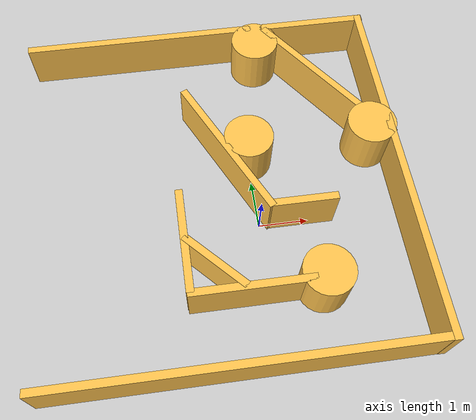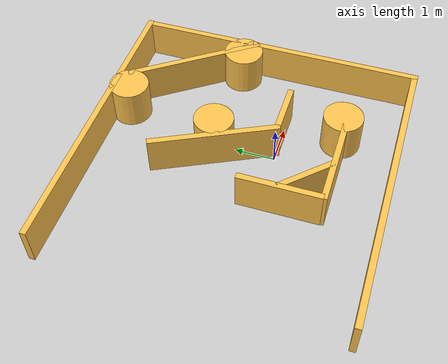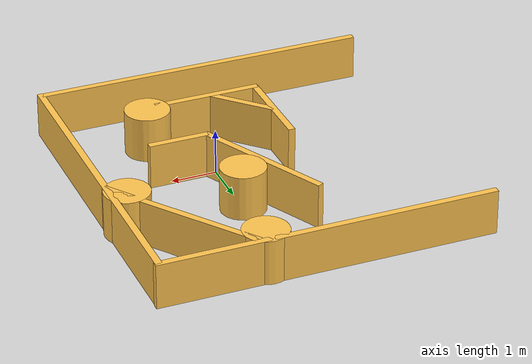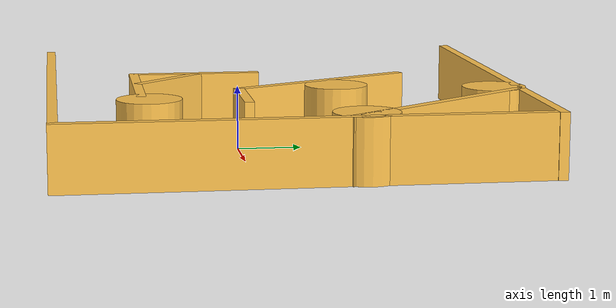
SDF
<?xml version='1.0'?>
<sdf version='1.5'>
  <model name='Maze_ql_1'>
    <link name='Wall_14'>
      <pose frame=''>-0.409926 -1.55115 0 0 -0 3.14159</pose>
      <self_collide>0</self_collide>
      <kinematic>0</kinematic>
      <visual name='Wall_14_Visual'>
        <pose frame=''>0 0 0.5 0 -0 0</pose>
        <geometry>
          <box>
            <size>2.36648 0.15 1</size>
          </box>
        </geometry>
        <material>
          <script>
            <uri>file://media/materials/scripts/gazebo.material</uri>
            <name>Gazebo/Grey</name>
          </script>
          <ambient>1 0.764706 0.305882 1</ambient>
          <diffuse>0.7 0.7 0.7 1</diffuse>
          <specular>0.01 0.01 0.01 1</specular>
          <emissive>0 0 0 1</emissive>
          <shader type='pixel'/>
        </material>
        <cast_shadows>1</cast_shadows>
        <transparency>0</transparency>
      </visual>
      <collision name='Wall_14_Collision'>
        <laser_retro>0</laser_retro>
        <max_contacts>10</max_contacts>
        <pose frame=''>0 0 0.5 0 -0 0</pose>
        <geometry>
          <box>
            <size>2.36648 0.15 1</size>
          </box>
        </geometry>
        <surface>
          <friction>
            <ode>
              <mu>1</mu>
              <mu2>1</mu2>
              <fdir1>0 0 0</fdir1>
              <slip1>0</slip1>
              <slip2>0</slip2>
            </ode>
          </friction>
          <bounce>
            <restitution_coefficient>0</restitution_coefficient>
            <threshold>1e+06</threshold>
          </bounce>
          <contact>
            <collide_without_contact>0</collide_without_contact>
            <collide_without_contact_bitmask>1</collide_without_contact_bitmask>
            <collide_bitmask>1</collide_bitmask>
            <ode>
              <soft_cfm>0</soft_cfm>
              <soft_erp>0.2</soft_erp>
              <kp>1e+13</kp>
              <kd>1</kd>
              <max_vel>0.01</max_vel>
              <min_depth>0</min_depth>
            </ode>
            <bullet>
              <split_impulse>1</split_impulse>
              <split_impulse_penetration_threshold>-0.01</split_impulse_penetration_threshold>
              <soft_cfm>0</soft_cfm>
              <soft_erp>0.2</soft_erp>
              <kp>1e+13</kp>
              <kd>1</kd>
            </bullet>
          </contact>
        </surface>
      </collision>
    </link>
    <link name='Wall_15'>
      <pose frame=''>-1.53187 -0.513425 0 0 -0 1.5708</pose>
      <self_collide>0</self_collide>
      <kinematic>0</kinematic>
      <visual name='Wall_15_Visual'>
        <pose frame=''>0 0 0.5 0 -0 0</pose>
        <geometry>
          <box>
            <size>2.06622 0.15 1</size>
          </box>
        </geometry>
        <material>
          <script>
            <uri>file://media/materials/scripts/gazebo.material</uri>
            <name>Gazebo/Grey</name>
          </script>
          <ambient>1 0.764706 0.305882 1</ambient>
          <diffuse>0.7 0.7 0.7 1</diffuse>
          <specular>0.01 0.01 0.01 1</specular>
          <emissive>0 0 0 1</emissive>
          <shader type='pixel'/>
        </material>
        <cast_shadows>1</cast_shadows>
        <transparency>0</transparency>
      </visual>
      <collision name='Wall_15_Collision'>
        <laser_retro>0</laser_retro>
        <max_contacts>10</max_contacts>
        <pose frame=''>0 0 0.5 0 -0 0</pose>
        <geometry>
          <box>
            <size>2.06622 0.15 1</size>
          </box>
        </geometry>
        <surface>
          <friction>
            <ode>
              <mu>1</mu>
              <mu2>1</mu2>
              <fdir1>0 0 0</fdir1>
              <slip1>0</slip1>
              <slip2>0</slip2>
            </ode>
          </friction>
          <bounce>
            <restitution_coefficient>0</restitution_coefficient>
            <threshold>1e+06</threshold>
          </bounce>
          <contact>
            <collide_without_contact>0</collide_without_contact>
            <collide_without_contact_bitmask>1</collide_without_contact_bitmask>
            <collide_bitmask>1</collide_bitmask>
            <ode>
              <soft_cfm>0</soft_cfm>
              <soft_erp>0.2</soft_erp>
              <kp>1e+13</kp>
              <kd>1</kd>
              <max_vel>0.01</max_vel>
              <min_depth>0</min_depth>
            </ode>
            <bullet>
              <split_impulse>1</split_impulse>
              <split_impulse_penetration_threshold>-0.01</split_impulse_penetration_threshold>
              <soft_cfm>0</soft_cfm>
              <soft_erp>0.2</soft_erp>
              <kp>1e+13</kp>
              <kd>1</kd>
            </bullet>
          </contact>
        </surface>
      </collision>
    </link>
    <link name='Wall_19'>
      <pose frame=''>0.837565 0.010614 0 0 -0 3.14159</pose>
      <self_collide>0</self_collide>
      <kinematic>0</kinematic>
      <visual name='Wall_19_Visual'>
        <pose frame=''>0 0 0.5 0 -0 0</pose>
        <geometry>
          <box>
            <size>1.32777 0.15 1</size>
          </box>
        </geometry>
        <material>
          <script>
            <uri>file://media/materials/scripts/gazebo.material</uri>
            <name>Gazebo/Grey</name>
          </script>
          <ambient>1 0.764706 0.305882 1</ambient>
          <diffuse>0.7 0.7 0.7 1</diffuse>
          <specular>0.01 0.01 0.01 1</specular>
          <emissive>0 0 0 1</emissive>
          <shader type='pixel'/>
        </material>
        <cast_shadows>1</cast_shadows>
        <transparency>0</transparency>
      </visual>
      <collision name='Wall_19_Collision'>
        <laser_retro>0</laser_retro>
        <max_contacts>10</max_contacts>
        <pose frame=''>0 0 0.5 0 -0 0</pose>
        <geometry>
          <box>
            <size>1.32777 0.15 1</size>
          </box>
        </geometry>
        <surface>
          <friction>
            <ode>
              <mu>1</mu>
              <mu2>1</mu2>
              <fdir1>0 0 0</fdir1>
              <slip1>0</slip1>
              <slip2>0</slip2>
            </ode>
          </friction>
          <bounce>
            <restitution_coefficient>0</restitution_coefficient>
            <threshold>1e+06</threshold>
          </bounce>
          <contact>
            <collide_without_contact>0</collide_without_contact>
            <collide_without_contact_bitmask>1</collide_without_contact_bitmask>
            <collide_bitmask>1</collide_bitmask>
            <ode>
              <soft_cfm>0</soft_cfm>
              <soft_erp>0.2</soft_erp>
              <kp>1e+13</kp>
              <kd>1</kd>
              <max_vel>0.01</max_vel>
              <min_depth>0</min_depth>
            </ode>
            <bullet>
              <split_impulse>1</split_impulse>
              <split_impulse_penetration_threshold>-0.01</split_impulse_penetration_threshold>
              <soft_cfm>0</soft_cfm>
              <soft_erp>0.2</soft_erp>
              <kp>1e+13</kp>
              <kd>1</kd>
            </bullet>
          </contact>
        </surface>
      </collision>
    </link>
    <link name='Wall_20'>
      <pose frame=''>-0.484506 1.39698 0 0 -0 2.02352</pose>
      <self_collide>0</self_collide>
      <kinematic>0</kinematic>
      <visual name='Wall_20_Visual'>
        <pose frame=''>0 0 0.5 0 -0 0</pose>
        <geometry>
          <box>
            <size>3.22686 0.15 1</size>
          </box>
        </geometry>
        <material>
          <script>
            <uri>file://media/materials/scripts/gazebo.material</uri>
            <name>Gazebo/Grey</name>
          </script>
          <ambient>1 0.764706 0.305882 1</ambient>
          <diffuse>0.7 0.7 0.7 1</diffuse>
          <specular>0.01 0.01 0.01 1</specular>
          <emissive>0 0 0 1</emissive>
          <shader type='pixel'/>
        </material>
        <cast_shadows>1</cast_shadows>
        <transparency>0</transparency>
      </visual>
      <collision name='Wall_20_Collision'>
        <laser_retro>0</laser_retro>
        <max_contacts>10</max_contacts>
        <pose frame=''>0 0 0.5 0 -0 0</pose>
        <geometry>
          <box>
            <size>3.22686 0.15 1</size>
          </box>
        </geometry>
        <surface>
          <friction>
            <ode>
              <mu>1</mu>
              <mu2>1</mu2>
              <fdir1>0 0 0</fdir1>
              <slip1>0</slip1>
              <slip2>0</slip2>
            </ode>
          </friction>
          <bounce>
            <restitution_coefficient>0</restitution_coefficient>
            <threshold>1e+06</threshold>
          </bounce>
          <contact>
            <collide_without_contact>0</collide_without_contact>
            <collide_without_contact_bitmask>1</collide_without_contact_bitmask>
            <collide_bitmask>1</collide_bitmask>
            <ode>
              <soft_cfm>0</soft_cfm>
              <soft_erp>0.2</soft_erp>
              <kp>1e+13</kp>
              <kd>1</kd>
              <max_vel>0.01</max_vel>
              <min_depth>0</min_depth>
            </ode>
            <bullet>
              <split_impulse>1</split_impulse>
              <split_impulse_penetration_threshold>-0.01</split_impulse_penetration_threshold>
              <soft_cfm>0</soft_cfm>
              <soft_erp>0.2</soft_erp>
              <kp>1e+13</kp>
              <kd>1</kd>
            </bullet>
          </contact>
        </surface>
      </collision>
    </link>
    <link name='Wall_24'>
      <pose frame=''>1.8412 2.79579 0 0 0 -0.948986</pose>
      <self_collide>0</self_collide>
      <kinematic>0</kinematic>
      <visual name='Wall_24_Visual'>
        <pose frame=''>0 0 0.5 0 -0 0</pose>
        <geometry>
          <box>
            <size>3.76645 0.15 1</size>
          </box>
        </geometry>
        <material>
          <script>
            <uri>file://media/materials/scripts/gazebo.material</uri>
            <name>Gazebo/Grey</name>
          </script>
          <ambient>1 0.764706 0.305882 1</ambient>
          <diffuse>0.7 0.7 0.7 1</diffuse>
          <specular>0.01 0.01 0.01 1</specular>
          <emissive>0 0 0 1</emissive>
          <shader type='pixel'/>
        </material>
        <cast_shadows>1</cast_shadows>
        <transparency>0</transparency>
      </visual>
      <collision name='Wall_24_Collision'>
        <laser_retro>0</laser_retro>
        <max_contacts>10</max_contacts>
        <pose frame=''>0 0 0.5 0 -0 0</pose>
        <geometry>
          <box>
            <size>3.76645 0.15 1</size>
          </box>
        </geometry>
        <surface>
          <friction>
            <ode>
              <mu>1</mu>
              <mu2>1</mu2>
              <fdir1>0 0 0</fdir1>
              <slip1>0</slip1>
              <slip2>0</slip2>
            </ode>
          </friction>
          <bounce>
            <restitution_coefficient>0</restitution_coefficient>
            <threshold>1e+06</threshold>
          </bounce>
          <contact>
            <collide_without_contact>0</collide_without_contact>
            <collide_without_contact_bitmask>1</collide_without_contact_bitmask>
            <collide_bitmask>1</collide_bitmask>
            <ode>
              <soft_cfm>0</soft_cfm>
              <soft_erp>0.2</soft_erp>
              <kp>1e+13</kp>
              <kd>1</kd>
              <max_vel>0.01</max_vel>
              <min_depth>0</min_depth>
            </ode>
            <bullet>
              <split_impulse>1</split_impulse>
              <split_impulse_penetration_threshold>-0.01</split_impulse_penetration_threshold>
              <soft_cfm>0</soft_cfm>
              <soft_erp>0.2</soft_erp>
              <kp>1e+13</kp>
              <kd>1</kd>
            </bullet>
          </contact>
        </surface>
      </collision>
    </link>
    <link name='Wall_24_clone'>
      <pose frame=''>-1.0172 -1.00075 0 0 0 -0.803995</pose>
      <self_collide>0</self_collide>
      <kinematic>0</kinematic>
      <visual name='ModelPreview_2::Wall_24_clone::Wall_24_Visual'>
        <pose frame=''>0 0 0.5 0 -0 0</pose>
        <geometry>
          <box>
            <size>1.5 0.15 1</size>
          </box>
        </geometry>
        <material>
          <script>
            <uri>file://media/materials/scripts/gazebo.material</uri>
            <name>Gazebo/Grey</name>
          </script>
          <ambient>1 0.764706 0.305882 1</ambient>
          <diffuse>0.7 0.7 0.7 1</diffuse>
          <specular>0.01 0.01 0.01 1</specular>
          <emissive>0 0 0 1</emissive>
          <shader type='pixel'/>
        </material>
        <cast_shadows>1</cast_shadows>
        <transparency>0</transparency>
      </visual>
      <collision name='Wall_24_Collision'>
        <laser_retro>0</laser_retro>
        <max_contacts>10</max_contacts>
        <pose frame=''>0 0 0.5 0 -0 0</pose>
        <geometry>
          <box>
            <size>1.5 0.15 1</size>
          </box>
        </geometry>
        <surface>
          <friction>
            <ode>
              <mu>1</mu>
              <mu2>1</mu2>
              <fdir1>0 0 0</fdir1>
              <slip1>0</slip1>
              <slip2>0</slip2>
            </ode>
          </friction>
          <bounce>
            <restitution_coefficient>0</restitution_coefficient>
            <threshold>1e+06</threshold>
          </bounce>
          <contact>
            <collide_without_contact>0</collide_without_contact>
            <collide_without_contact_bitmask>1</collide_without_contact_bitmask>
            <collide_bitmask>1</collide_bitmask>
            <ode>
              <soft_cfm>0</soft_cfm>
              <soft_erp>0.2</soft_erp>
              <kp>1e+13</kp>
              <kd>1</kd>
              <max_vel>0.01</max_vel>
              <min_depth>0</min_depth>
            </ode>
            <bullet>
              <split_impulse>1</split_impulse>
              <split_impulse_penetration_threshold>-0.01</split_impulse_penetration_threshold>
              <soft_cfm>0</soft_cfm>
              <soft_erp>0.2</soft_erp>
              <kp>1e+13</kp>
              <kd>1</kd>
            </bullet>
          </contact>
        </surface>
      </collision>
    </link>
    <link name='Wall_6'>
      <pose frame=''>-0.787021 -2.89307 0 0 -0 0</pose>
      <self_collide>0</self_collide>
      <kinematic>0</kinematic>
      <visual name='Wall_6_Visual'>
        <pose frame=''>0 0 0.5 0 -0 0</pose>
        <geometry>
          <box>
            <size>7.34986 0.15 1</size>
          </box>
        </geometry>
        <material>
          <script>
            <uri>file://media/materials/scripts/gazebo.material</uri>
            <name>Gazebo/Grey</name>
          </script>
          <ambient>1 0.764706 0.305882 1</ambient>
          <diffuse>0.7 0.7 0.7 1</diffuse>
          <specular>0.01 0.01 0.01 1</specular>
          <emissive>0 0 0 1</emissive>
          <shader type='pixel'/>
        </material>
        <cast_shadows>1</cast_shadows>
        <transparency>0</transparency>
      </visual>
      <collision name='Wall_6_Collision'>
        <laser_retro>0</laser_retro>
        <max_contacts>10</max_contacts>
        <pose frame=''>0 0 0.5 0 -0 0</pose>
        <geometry>
          <box>
            <size>7.34986 0.15 1</size>
          </box>
        </geometry>
        <surface>
          <friction>
            <ode>
              <mu>1</mu>
              <mu2>1</mu2>
              <fdir1>0 0 0</fdir1>
              <slip1>0</slip1>
              <slip2>0</slip2>
            </ode>
          </friction>
          <bounce>
            <restitution_coefficient>0</restitution_coefficient>
            <threshold>1e+06</threshold>
          </bounce>
          <contact>
            <collide_without_contact>0</collide_without_contact>
            <collide_without_contact_bitmask>1</collide_without_contact_bitmask>
            <collide_bitmask>1</collide_bitmask>
            <ode>
              <soft_cfm>0</soft_cfm>
              <soft_erp>0.2</soft_erp>
              <kp>1e+13</kp>
              <kd>1</kd>
              <max_vel>0.01</max_vel>
              <min_depth>0</min_depth>
            </ode>
            <bullet>
              <split_impulse>1</split_impulse>
              <split_impulse_penetration_threshold>-0.01</split_impulse_penetration_threshold>
              <soft_cfm>0</soft_cfm>
              <soft_erp>0.2</soft_erp>
              <kp>1e+13</kp>
              <kd>1</kd>
            </bullet>
          </contact>
        </surface>
      </collision>
    </link>
    <link name='Wall_6_clone'>
      <pose frame=''>-0.718431 4.37517 0 0 -0 0</pose>
      <self_collide>0</self_collide>
      <kinematic>0</kinematic>
      <visual name='ModelPreview_2::Wall_6_clone::Wall_6_Visual'>
        <pose frame=''>0 0 0.5 0 -0 0</pose>
        <geometry>
          <box>
            <size>7.41907 0.15 1</size>
          </box>
        </geometry>
        <material>
          <script>
            <uri>file://media/materials/scripts/gazebo.material</uri>
            <name>Gazebo/Grey</name>
          </script>
          <ambient>1 0.764706 0.305882 1</ambient>
          <diffuse>0.7 0.7 0.7 1</diffuse>
          <specular>0.01 0.01 0.01 1</specular>
          <emissive>0 0 0 1</emissive>
          <shader type='pixel'/>
        </material>
        <cast_shadows>1</cast_shadows>
        <transparency>0</transparency>
      </visual>
      <collision name='Wall_6_Collision'>
        <laser_retro>0</laser_retro>
        <max_contacts>10</max_contacts>
        <pose frame=''>0 0 0.5 0 -0 0</pose>
        <geometry>
          <box>
            <size>7.41907 0.15 1</size>
          </box>
        </geometry>
        <surface>
          <friction>
            <ode>
              <mu>1</mu>
              <mu2>1</mu2>
              <fdir1>0 0 0</fdir1>
              <slip1>0</slip1>
              <slip2>0</slip2>
            </ode>
          </friction>
          <bounce>
            <restitution_coefficient>0</restitution_coefficient>
            <threshold>1e+06</threshold>
          </bounce>
          <contact>
            <collide_without_contact>0</collide_without_contact>
            <collide_without_contact_bitmask>1</collide_without_contact_bitmask>
            <collide_bitmask>1</collide_bitmask>
            <ode>
              <soft_cfm>0</soft_cfm>
              <soft_erp>0.2</soft_erp>
              <kp>1e+13</kp>
              <kd>1</kd>
              <max_vel>0.01</max_vel>
              <min_depth>0</min_depth>
            </ode>
            <bullet>
              <split_impulse>1</split_impulse>
              <split_impulse_penetration_threshold>-0.01</split_impulse_penetration_threshold>
              <soft_cfm>0</soft_cfm>
              <soft_erp>0.2</soft_erp>
              <kp>1e+13</kp>
              <kd>1</kd>
            </bullet>
          </contact>
        </surface>
      </collision>
    </link>
    <link name='Wall_7'>
      <pose frame=''>2.90228 0.736783 0 0 -0 1.5708</pose>
      <self_collide>0</self_collide>
      <kinematic>0</kinematic>
      <visual name='Wall_7_Visual'>
        <pose frame=''>0 0 0.5 0 -0 0</pose>
        <geometry>
          <box>
            <size>7.42238 0.15 1</size>
          </box>
        </geometry>
        <material>
          <script>
            <uri>file://media/materials/scripts/gazebo.material</uri>
            <name>Gazebo/Grey</name>
          </script>
          <ambient>1 0.764706 0.305882 1</ambient>
          <diffuse>0.7 0.7 0.7 1</diffuse>
          <specular>0.01 0.01 0.01 1</specular>
          <emissive>0 0 0 1</emissive>
          <shader type='pixel'/>
        </material>
        <cast_shadows>1</cast_shadows>
        <transparency>0</transparency>
      </visual>
      <collision name='Wall_7_Collision'>
        <laser_retro>0</laser_retro>
        <max_contacts>10</max_contacts>
        <pose frame=''>0 0 0.5 0 -0 0</pose>
        <geometry>
          <box>
            <size>7.42238 0.15 1</size>
          </box>
        </geometry>
        <surface>
          <friction>
            <ode>
              <mu>1</mu>
              <mu2>1</mu2>
              <fdir1>0 0 0</fdir1>
              <slip1>0</slip1>
              <slip2>0</slip2>
            </ode>
          </friction>
          <bounce>
            <restitution_coefficient>0</restitution_coefficient>
            <threshold>1e+06</threshold>
          </bounce>
          <contact>
            <collide_without_contact>0</collide_without_contact>
            <collide_without_contact_bitmask>1</collide_without_contact_bitmask>
            <collide_bitmask>1</collide_bitmask>
            <ode>
              <soft_cfm>0</soft_cfm>
              <soft_erp>0.2</soft_erp>
              <kp>1e+13</kp>
              <kd>1</kd>
              <max_vel>0.01</max_vel>
              <min_depth>0</min_depth>
            </ode>
            <bullet>
              <split_impulse>1</split_impulse>
              <split_impulse_penetration_threshold>-0.01</split_impulse_penetration_threshold>
              <soft_cfm>0</soft_cfm>
              <soft_erp>0.2</soft_erp>
              <kp>1e+13</kp>
              <kd>1</kd>
            </bullet>
          </contact>
        </surface>
      </collision>
    </link>
    <link name='link_1'>
      <pose frame=''>1 -1.44562 0.5 0 -0 0</pose>
      <visual name='visual'>
        <pose frame=''>0 0 0 0 -0 0</pose>
        <geometry>
          <cylinder>
            <radius>0.5</radius>
            <length>1</length>
          </cylinder>
        </geometry>
        <material>
          <script>
            <uri>file://media/materials/scripts/gazebo.material</uri>
            <name>Gazebo/Grey</name>
          </script>
          <ambient>1 0.764706 0.305882 1</ambient>
          <diffuse>0.7 0.7 0.7 1</diffuse>
          <specular>0.01 0.01 0.01 1</specular>
          <emissive>0 0 0 1</emissive>
          <shader type='pixel'/>
        </material>
        <cast_shadows>1</cast_shadows>
        <transparency>0</transparency>
      </visual>
      <collision name='collision'>
        <laser_retro>0</laser_retro>
        <max_contacts>10</max_contacts>
        <pose frame=''>0 0 0 0 -0 0</pose>
        <geometry>
          <cylinder>
            <radius>0.5</radius>
            <length>1</length>
          </cylinder>
        </geometry>
        <surface>
          <friction>
            <ode>
              <mu>1</mu>
              <mu2>1</mu2>
              <fdir1>0 0 0</fdir1>
              <slip1>0</slip1>
              <slip2>0</slip2>
            </ode>
          </friction>
          <bounce>
            <restitution_coefficient>0</restitution_coefficient>
            <threshold>1e+06</threshold>
          </bounce>
          <contact>
            <collide_without_contact>0</collide_without_contact>
            <collide_without_contact_bitmask>1</collide_without_contact_bitmask>
            <collide_bitmask>1</collide_bitmask>
            <ode>
              <soft_cfm>0</soft_cfm>
              <soft_erp>0.2</soft_erp>
              <kp>1e+13</kp>
              <kd>1</kd>
              <max_vel>0.01</max_vel>
              <min_depth>0</min_depth>
            </ode>
            <bullet>
              <split_impulse>1</split_impulse>
              <split_impulse_penetration_threshold>-0.01</split_impulse_penetration_threshold>
              <soft_cfm>0</soft_cfm>
              <soft_erp>0.2</soft_erp>
              <kp>1e+13</kp>
              <kd>1</kd>
            </bullet>
          </contact>
        </surface>
      </collision>
    </link>
    <link name='link_2'>
      <pose frame=''>0.498835 4 0.5 0 -0 0</pose>
      <visual name='visual'>
        <pose frame=''>0 0 0 0 -0 0</pose>
        <geometry>
          <cylinder>
            <radius>0.5</radius>
            <length>1</length>
          </cylinder>
        </geometry>
        <material>
          <script>
            <uri>file://media/materials/scripts/gazebo.material</uri>
            <name>Gazebo/Grey</name>
          </script>
          <ambient>1 0.764706 0.305882 1</ambient>
          <diffuse>0.7 0.7 0.7 1</diffuse>
          <specular>0.01 0.01 0.01 1</specular>
          <emissive>0 0 0 1</emissive>
          <shader type='pixel'/>
        </material>
        <cast_shadows>1</cast_shadows>
        <transparency>0</transparency>
        <cast_shadows>1</cast_shadows>
        <transparency>0</transparency>
      </visual>
      <collision name='collision'>
        <laser_retro>0</laser_retro>
        <max_contacts>10</max_contacts>
        <pose frame=''>0 0 0 0 -0 0</pose>
        <geometry>
          <cylinder>
            <radius>0.5</radius>
            <length>1</length>
          </cylinder>
        </geometry>
        <surface>
          <friction>
            <ode>
              <mu>1</mu>
              <mu2>1</mu2>
              <fdir1>0 0 0</fdir1>
              <slip1>0</slip1>
              <slip2>0</slip2>
            </ode>
          </friction>
          <bounce>
            <restitution_coefficient>0</restitution_coefficient>
            <threshold>1e+06</threshold>
          </bounce>
          <contact>
            <collide_without_contact>0</collide_without_contact>
            <collide_without_contact_bitmask>1</collide_without_contact_bitmask>
            <collide_bitmask>1</collide_bitmask>
            <ode>
              <soft_cfm>0</soft_cfm>
              <soft_erp>0.2</soft_erp>
              <kp>1e+13</kp>
              <kd>1</kd>
              <max_vel>0.01</max_vel>
              <min_depth>0</min_depth>
            </ode>
            <bullet>
              <split_impulse>1</split_impulse>
              <split_impulse_penetration_threshold>-0.01</split_impulse_penetration_threshold>
              <soft_cfm>0</soft_cfm>
              <soft_erp>0.2</soft_erp>
              <kp>1e+13</kp>
              <kd>1</kd>
            </bullet>
          </contact>
        </surface>
      </collision>
    </link>
    <link name='link_3'>
      <pose frame=''>0 1.56543 0.5 0 -0 0</pose>
      <visual name='visual'>
        <pose frame=''>0 0 0 0 -0 0</pose>
        <geometry>
          <cylinder>
            <radius>0.5</radius>
            <length>1</length>
          </cylinder>
        </geometry>
        <material>
          <script>
            <uri>file://media/materials/scripts/gazebo.material</uri>
            <name>Gazebo/Grey</name>
          </script>
          <ambient>1 0.764706 0.305882 1</ambient>
          <diffuse>0.7 0.7 0.7 1</diffuse>
          <specular>0.01 0.01 0.01 1</specular>
          <emissive>0 0 0 1</emissive>
          <shader type='pixel'/>
        </material>
        <cast_shadows>1</cast_shadows>
        <transparency>0</transparency>
        <cast_shadows>1</cast_shadows>
        <transparency>0</transparency>
      </visual>
      <collision name='collision'>
        <laser_retro>0</laser_retro>
        <max_contacts>10</max_contacts>
        <pose frame=''>0 0 0 0 -0 0</pose>
        <geometry>
          <cylinder>
            <radius>0.5</radius>
            <length>1</length>
          </cylinder>
        </geometry>
        <surface>
          <friction>
            <ode>
              <mu>1</mu>
              <mu2>1</mu2>
              <fdir1>0 0 0</fdir1>
              <slip1>0</slip1>
              <slip2>0</slip2>
            </ode>
          </friction>
          <bounce>
            <restitution_coefficient>0</restitution_coefficient>
            <threshold>1e+06</threshold>
          </bounce>
          <contact>
            <collide_without_contact>0</collide_without_contact>
            <collide_without_contact_bitmask>1</collide_without_contact_bitmask>
            <collide_bitmask>1</collide_bitmask>
            <ode>
              <soft_cfm>0</soft_cfm>
              <soft_erp>0.2</soft_erp>
              <kp>1e+13</kp>
              <kd>1</kd>
              <max_vel>0.01</max_vel>
              <min_depth>0</min_depth>
            </ode>
            <bullet>
              <split_impulse>1</split_impulse>
              <split_impulse_penetration_threshold>-0.01</split_impulse_penetration_threshold>
              <soft_cfm>0</soft_cfm>
              <soft_erp>0.2</soft_erp>
              <kp>1e+13</kp>
              <kd>1</kd>
            </bullet>
          </contact>
        </surface>
      </collision>
    </link>
    <link name='link_4'>
      <pose frame=''>2.54621 1.57728 0.5 0 -0 0</pose>
      <visual name='visual'>
        <pose frame=''>0 0 0 0 -0 0</pose>
        <geometry>
          <cylinder>
            <radius>0.5</radius>
            <length>1</length>
          </cylinder>
        </geometry>
        <material>
          <script>
            <uri>file://media/materials/scripts/gazebo.material</uri>
            <name>Gazebo/Grey</name>
          </script>
          <ambient>1 0.764706 0.305882 1</ambient>
          <diffuse>0.7 0.7 0.7 1</diffuse>
          <specular>0.01 0.01 0.01 1</specular>
          <emissive>0 0 0 1</emissive>
          <shader type='pixel'/>
        </material>
        <cast_shadows>1</cast_shadows>
        <transparency>0</transparency>
        <cast_shadows>1</cast_shadows>
        <transparency>0</transparency>
      </visual>
      <collision name='collision'>
        <laser_retro>0</laser_retro>
        <max_contacts>10</max_contacts>
        <pose frame=''>0 0 0 0 -0 0</pose>
        <geometry>
          <cylinder>
            <radius>0.5</radius>
            <length>1</length>
          </cylinder>
        </geometry>
        <surface>
          <friction>
            <ode>
              <mu>1</mu>
              <mu2>1</mu2>
              <fdir1>0 0 0</fdir1>
              <slip1>0</slip1>
              <slip2>0</slip2>
            </ode>
          </friction>
          <bounce>
            <restitution_coefficient>0</restitution_coefficient>
            <threshold>1e+06</threshold>
          </bounce>
          <contact>
            <collide_without_contact>0</collide_without_contact>
            <collide_without_contact_bitmask>1</collide_without_contact_bitmask>
            <collide_bitmask>1</collide_bitmask>
            <ode>
              <soft_cfm>0</soft_cfm>
              <soft_erp>0.2</soft_erp>
              <kp>1e+13</kp>
              <kd>1</kd>
              <max_vel>0.01</max_vel>
              <min_depth>0</min_depth>
            </ode>
            <bullet>
              <split_impulse>1</split_impulse>
              <split_impulse_penetration_threshold>-0.01</split_impulse_penetration_threshold>
              <soft_cfm>0</soft_cfm>
              <soft_erp>0.2</soft_erp>
              <kp>1e+13</kp>
              <kd>1</kd>
            </bullet>
          </contact>
        </surface>
      </collision>
    </link>
    <static>1</static>
    <allow_auto_disable>1</allow_auto_disable>
  </model>
</sdf>
